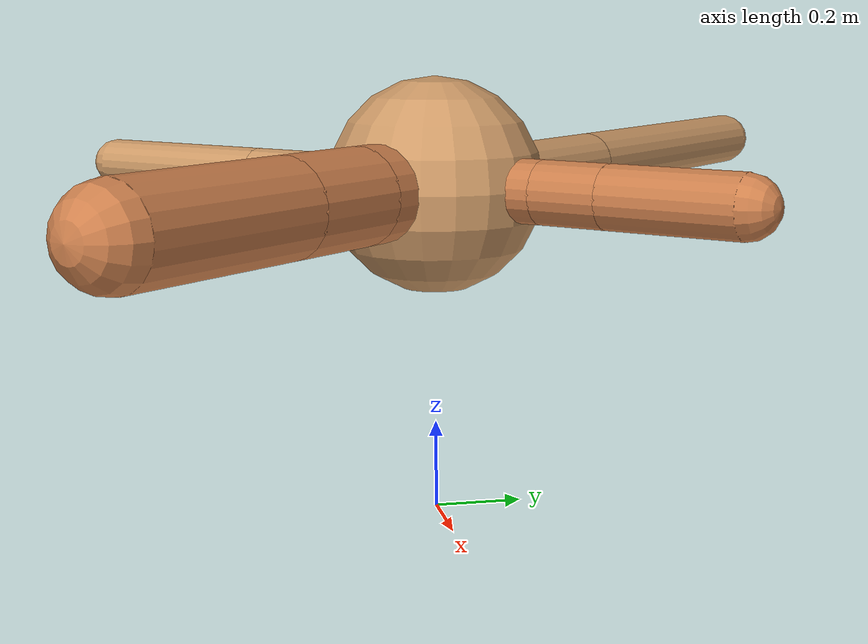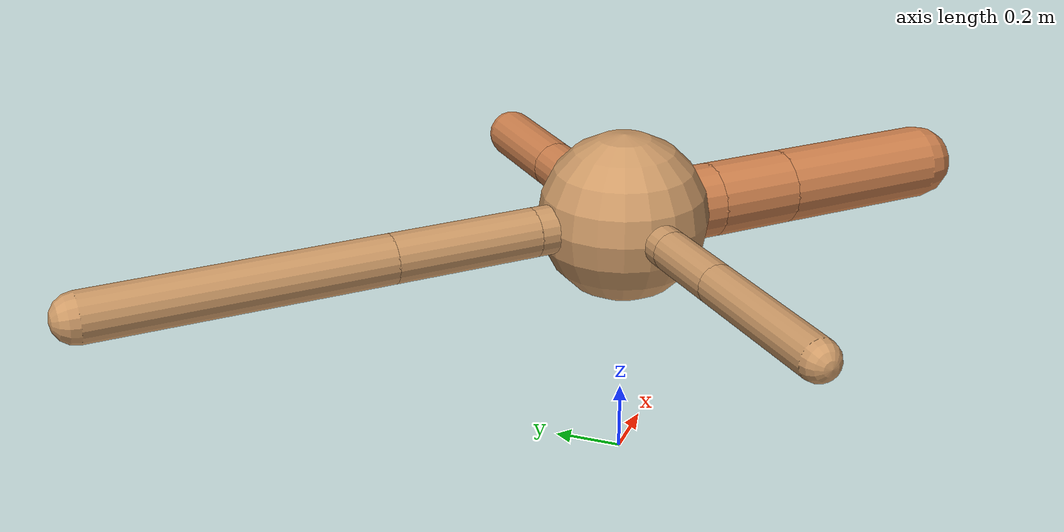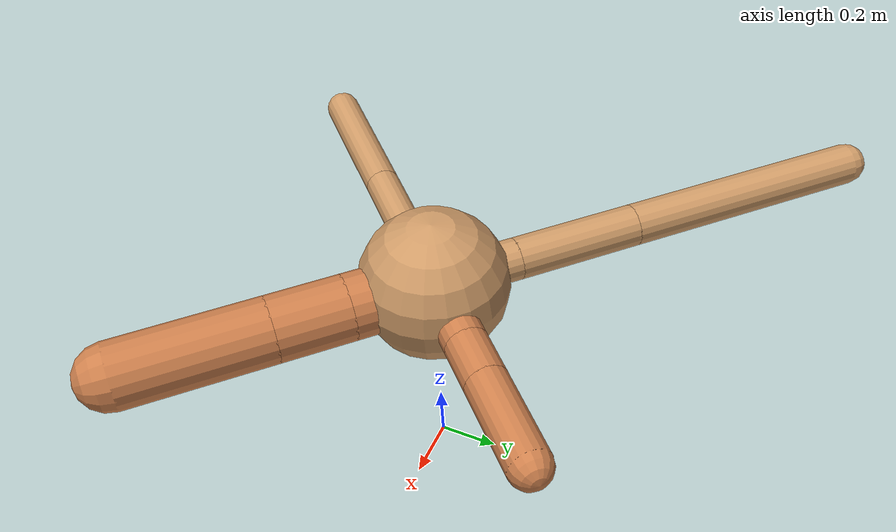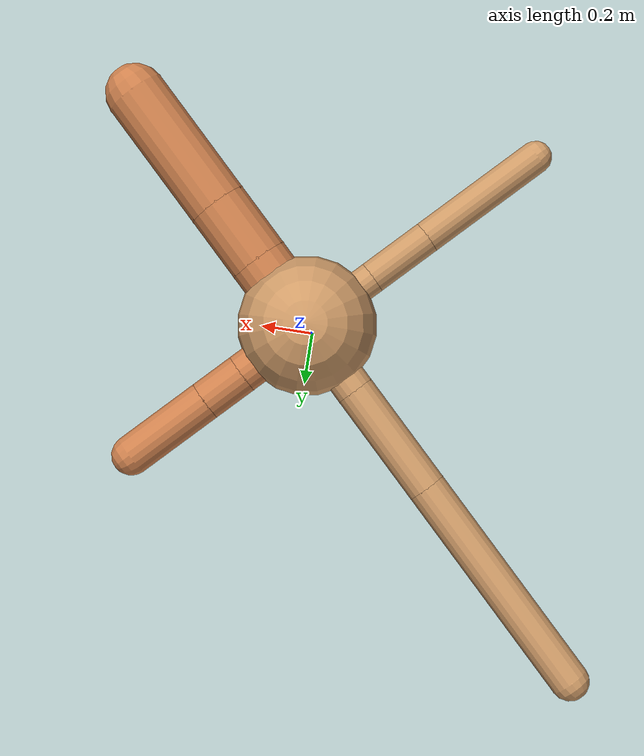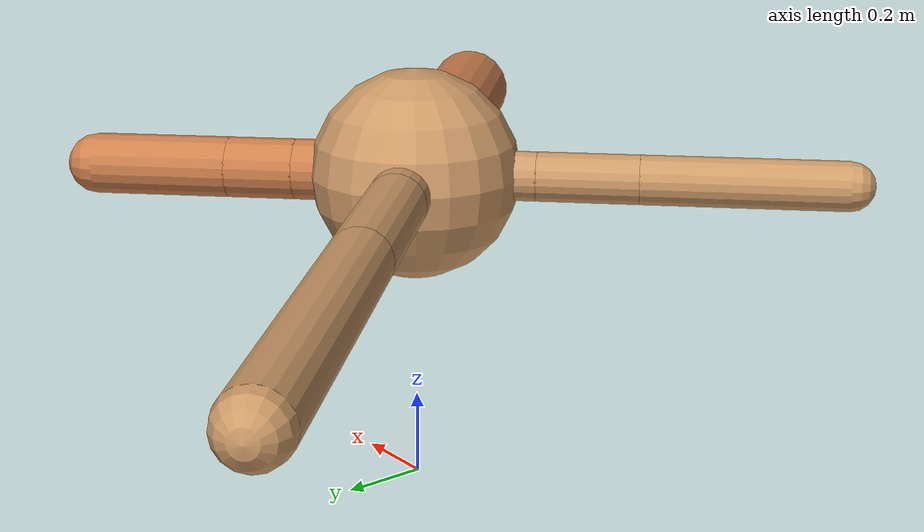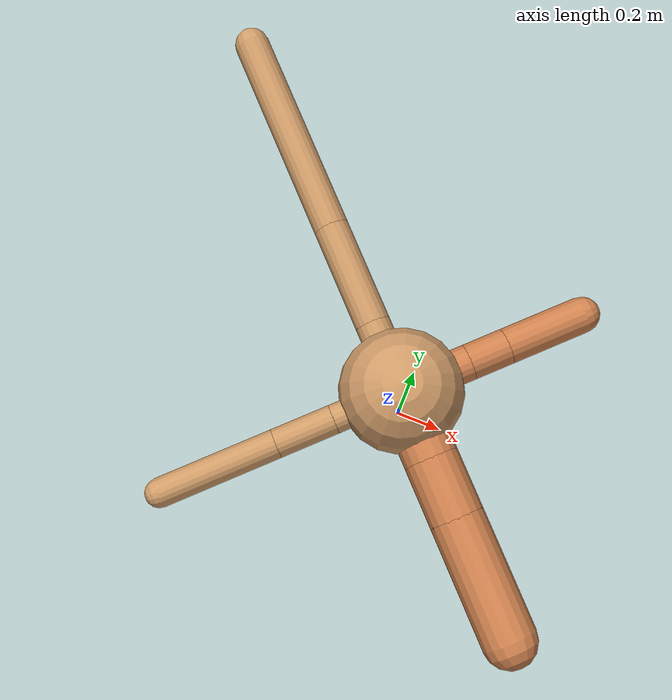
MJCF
<?xml version="1.0" ?>
<mujoco model="ant">

	<compiler angle="degree" coordinate="local" inertiafromgeom="true"/>

	<option integrator="RK4" timestep="0.01"/>

	<custom>

		<numeric data="0.0 0.0 0.55 1.0 0.0 0.0 0.0 0.0 1.0 0.0 -1.0 0.0 -1.0 0.0 1.0" name="init_qpos"/>

	</custom>

	<default>

		<joint armature="1" damping="1" limited="true"/>

		<geom conaffinity="0" condim="3" density="5.0" friction="1.5 0.1 0.1" margin="0.01" rgba="0.8 0.6 0.4 1"/>

	</default>

	<worldbody>

		<body name="torso" pos="0 0 0.75">

			<geom name="torso_geom" pos="0 0 0" size="0.24483535443365315" type="sphere"/>

			<!--joint armature="0" damping="0" limited="false" margin="0.01" name="root" pos="0 0 0" type="free"/-->

			<body name="front_left_leg" pos="0 0 0">

				<geom fromto="0 0 0 0.2 0.2 0" name="aux_1_geom" size="0.07134869809100748" type="capsule" rgba=".8 .5 .3 1"/>

				<body name="aux_1" pos="0.2 0.2 0">

					<joint axis="0 0 1" name="hip_1" pos="0.0 0.0 0.0" range="-40 40" type="hinge"/>

					<geom fromto="0 0 0 0.11280927317990037 0.11280927317990037 0" name="left_leg_geom" size="0.07134869809100748" type="capsule" rgba=".8 .5 .3 1"/>

					<body pos="0.11280927317990037 0.11280927317990037 0" name="front_left_foot">

						<joint axis="-1 1 0" name="ankle_1" pos="0.0 0.0 0.0" range="30 100" type="hinge"/>

						<geom fromto="0 0 0 0.22561854635980075 0.22561854635980075 0" name="left_ankle_geom" size="0.07134869809100748" type="capsule" rgba=".8 .5 .3 1"/>

					</body>

				</body>

			</body>

			<body name="front_right_leg" pos="0 0 0">

				<geom fromto="0 0 0 -0.2 0.2 0" name="aux_2_geom" size="0.06965334868267924" type="capsule"/>

				<body name="aux_2" pos="-0.2 0.2 0">

					<joint axis="0 0 1" name="hip_2" pos="0.0 0.0 0.0" range="-40 40" type="hinge"/>

					<geom fromto="0 0 0 -0.2969135304210288 0.2969135304210288 0" name="right_leg_geom" size="0.06965334868267924" type="capsule"/>

					<body pos="-0.2969135304210288 0.2969135304210288 0" name="front_right_foot">

						<joint axis="1 1 0" name="ankle_2" pos="0.0 0.0 0.0" range="-100 -30" type="hinge"/>

						<geom fromto="0 0 0 -0.5938270608420576 0.5938270608420576 0" name="right_ankle_geom" size="0.06965334868267924" type="capsule"/>

					</body>

				</body>

			</body>

			<body name="left_back_leg" pos="0 0 0">

				<geom fromto="0 0 0 -0.2 -0.2 0" name="aux_3_geom" size="0.05778915632663822" type="capsule"/>

				<body name="aux_3" pos="-0.2 -0.2 0">

					<joint axis="0 0 1" name="hip_3" pos="0.0 0.0 0.0" range="-40 40" type="hinge"/>

					<geom fromto="0 0 0 -0.16723791552682388 -0.16723791552682388 0" name="back_leg_geom" size="0.05778915632663822" type="capsule"/>

					<body pos="-0.16723791552682388 -0.16723791552682388 0" name="left_back_foot">

						<joint axis="-1 1 0" name="ankle_3" pos="0.0 0.0 0.0" range="-100 -30" type="hinge"/>

						<geom fromto="0 0 0 -0.33447583105364775 -0.33447583105364775 0" name="third_ankle_geom" size="0.05778915632663822" type="capsule"/>

					</body>

				</body>

			</body>

			<body name="right_back_leg" pos="0 0 0">

				<geom fromto="0 0 0 0.2 -0.2 0" name="aux_4_geom" size="0.10757723203528594" type="capsule" rgba=".8 .5 .3 1"/>

				<body name="aux_4" pos="0.2 -0.2 0">

					<joint axis="0 0 1" name="hip_4" pos="0.0 0.0 0.0" range="-40 40" type="hinge"/>

					<geom fromto="0 0 0 0.17131818687594888 -0.17131818687594888 0" name="rightback_leg_geom" size="0.10757723203528594" type="capsule" rgba=".8 .5 .3 1"/>

					<body pos="0.17131818687594888 -0.17131818687594888 0" name="right_back_foot">

						<joint axis="1 1 0" name="ankle_4" pos="0.0 0.0 0.0" range="30 100" type="hinge"/>

						<geom fromto="0 0 0 0.34263637375189776 -0.34263637375189776 0" name="fourth_ankle_geom" size="0.10757723203528594" type="capsule" rgba=".8 .5 .3 1"/>

					</body>

				</body>

			</body>

		</body>

	</worldbody>

	<actuator>

		<motor ctrllimited="true" ctrlrange="-1.0 1.0" joint="hip_4" gear="150"/>

		<motor ctrllimited="true" ctrlrange="-1.0 1.0" joint="ankle_4" gear="150"/>

		<motor ctrllimited="true" ctrlrange="-1.0 1.0" joint="hip_1" gear="150"/>

		<motor ctrllimited="true" ctrlrange="-1.0 1.0" joint="ankle_1" gear="150"/>

		<motor ctrllimited="true" ctrlrange="-1.0 1.0" joint="hip_2" gear="150"/>

		<motor ctrllimited="true" ctrlrange="-1.0 1.0" joint="ankle_2" gear="150"/>

		<motor ctrllimited="true" ctrlrange="-1.0 1.0" joint="hip_3" gear="150"/>

		<motor ctrllimited="true" ctrlrange="-1.0 1.0" joint="ankle_3" gear="150"/>

	</actuator>

</mujoco>
